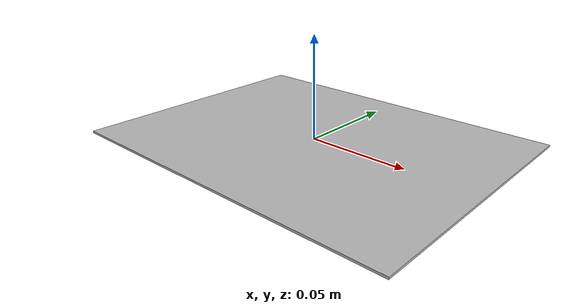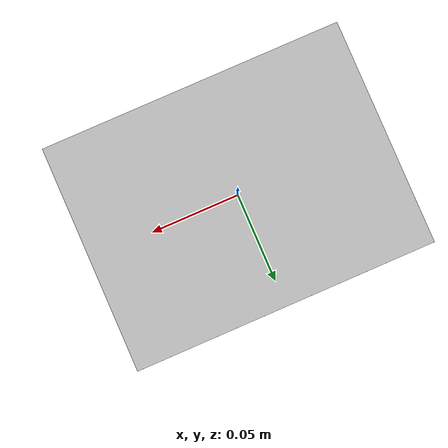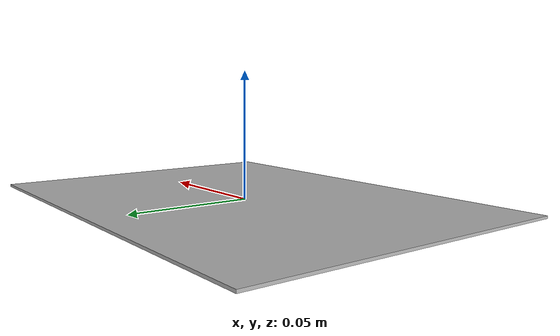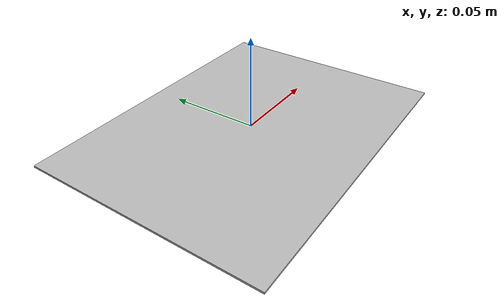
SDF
<?xml version='1.0'?>
<sdf version='1.5'>
  <model name='chessboard'>

    <link name='marker'>
      <pose frame=''>0 0 0 0 0 0</pose>
      <visual name='visual'>
        <geometry>
          <box>
            <size>0.1734 0.13 0.001</size>
          </box>
        </geometry>
        <material>
          <script>
            <uri>model://chessboard/materials/scripts</uri>
            <uri>model://chessboard/materials/textures</uri>
            <name>Chessboard</name>
          </script>
        </material>
        <pose frame=''>0 0 0 0 -0 0</pose>
        <cast_shadows>false</cast_shadows>
        <transparency>false</transparency>
      </visual>
    </link>
    <static>false</static>
    <allow_auto_disable>true</allow_auto_disable>
  </model>
</sdf>
